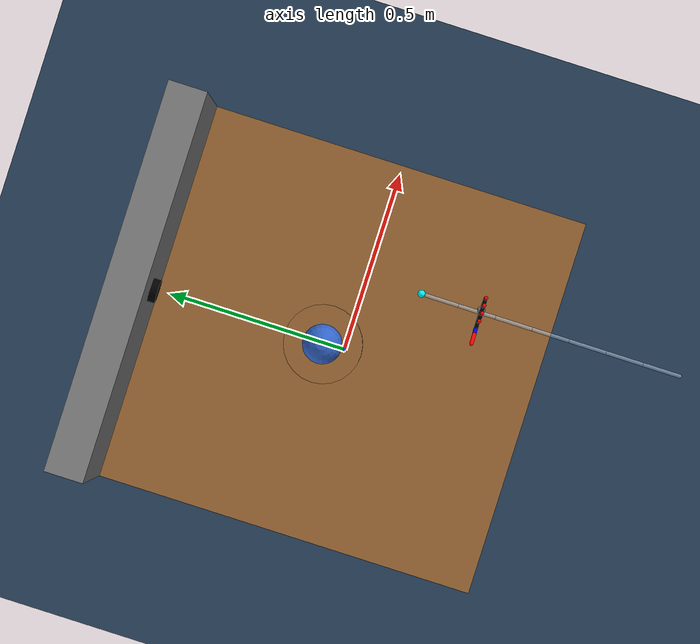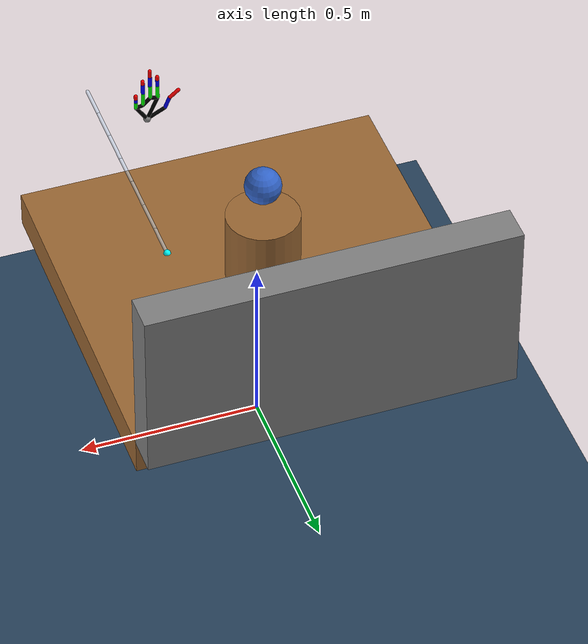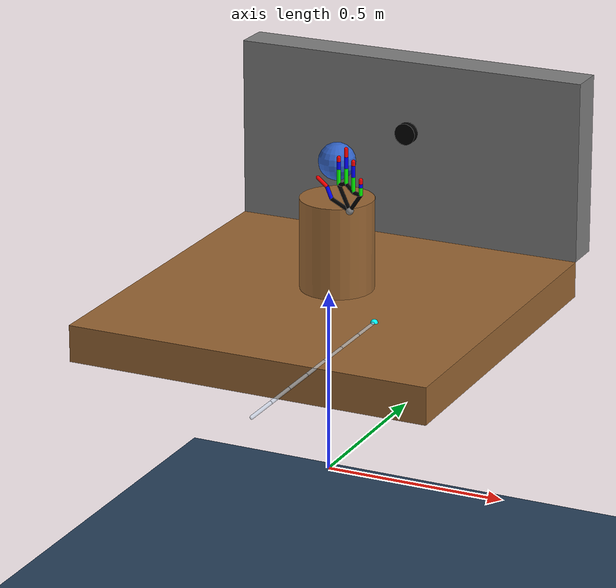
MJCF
<mujoco>
  <asset>
    <texture name="grid" type="2d" builtin="checker" rgb1=".1 .2 .3"
             rgb2=".2 .3 .4" width="300" height="300" mark="none"/>
    <material name="grid" texture="grid" texrepeat="1 1"
              texuniform="true" reflectance=".2"/>
  </asset>

  <default>
    <!-- More damping in joints so your hand doesn't punch the ball -->
    <joint damping="2.0"/>

    <!-- Softer, better-damped contacts + small margin for early, gentle contact -->
    <geom solref="0.02 1.2" solimp="0.9 0.95 0.003"
          friction="0.8 0.02 0.002" margin="0.001"/>
  </default>

  <worldbody>
    <light name="light" pos="0 0 2"/>
    <geom name="floor" type="plane" pos="0 0 -.5" size="4 4 .1" material="grid"/>
    <camera name="fixed" pos="0 -2 1" xyaxes="1 0 0 0 1 2"/>

    <!-- Table -->
    <body name="table" pos="0 0 0">
      <geom name="table_top" type="box" size="0.5 0.5 0.05" pos="0 0 0.45" rgba="0.6 0.4 0.2 1"/>
    </body>

    <!-- Wall with hole -->
    <body name="wall" pos="0 0.55 0.75">
      <geom name="wall_panel" type="box" size="0.5 0.05 0.25" rgba="0.5 0.5 0.5 1"/>
      <geom type="cylinder" size="0.03 0.02" pos="0 -0.05 0.05" rgba="0 0 0 1" euler="90 0 0"/>
    </body>

        <!-- Fiber optic cable on the table with a hanging tail -->
<body name="fiber_root" pos="0.2 -0.85 0.5">
  <joint name="fiber_root_free" type="free"/>
  <geom type="capsule" size="0.005 0.05" fromto="0 0 0 0 0.1 0" rgba="0.8 0.9 1 0.5"/>

  <!-- Segment 1 -->
  <body name="fiber_seg1" pos="0 0.1 0">
    <joint type="ball" damping="0.05"/>
    <geom type="capsule" size="0.005 0.05" fromto="0 0 0 0 0.1 0" rgba="0.8 0.9 1 0.5"/>

    <!-- Segment 2 -->
    <body name="fiber_seg2" pos="0 0.1 0">
      <joint type="ball" damping="0.05"/>
      <geom type="capsule" size="0.005 0.05" fromto="0 0 0 0 0.1 0" rgba="0.8 0.9 1 0.5"/>

      <!-- Segment 3 -->
      <body name="fiber_seg3" pos="0 0.1 0">
        <joint type="ball" damping="0.05"/>
        <geom type="capsule" size="0.005 0.05" fromto="0 0 0 0 0.1 0" rgba="0.8 0.9 1 0.5"/>

        <!-- Segment 4 -->
        <body name="fiber_seg4" pos="0 0.1 0">
          <joint type="ball" damping="0.05"/>
          <geom type="capsule" size="0.005 0.05" fromto="0 0 0 0 0.1 0" rgba="0.8 0.9 1 0.5"/>

          <!-- Segment 5 -->
          <body name="fiber_seg5" pos="0 0.1 0">
            <joint type="ball" damping="0.05"/>
            <geom type="capsule" size="0.005 0.05" fromto="0 0 0 0 0.1 0" rgba="0.8 0.9 1 0.5"/>

            <!-- Segment 6 with fiber tip -->
            <body name="fiber_seg6" pos="0 0.1 0">
              <joint type="ball" damping="0.05"/>
              <geom type="capsule" size="0.005 0.05" fromto="0 0 0 0 0.1 0" rgba="0.8 0.9 1 0.5"/>

              <!-- Glowing tip -->
              <body name="fiber_tip" pos="0 0.1 0">
                <geom name="fiber_light" type="sphere" size="0.01" rgba="0 1 1 1"/>
              </body>
            </body>

          </body>
        </body>

      </body>
    </body>
  </body>
</body>

    <!-- hand Gripper -->
    <body name="gripper_base" pos="0.2 -0.3 0.85">
      <joint name="gripper_x" type="slide" axis="1 0 0" range="-1 1" damping="5"/>
      <joint name="gripper_y" type="slide" axis="0 1 0" range="-1 1" damping="5"/>
      <joint name="gripper_z" type="slide" axis="0 0 1" range="-1 1" damping="5"/>
      <joint name="wrist_flex_pitch" type="hinge" axis="-1 0 0" range="-1 2" damping="1.0"/>
      <joint name="wrist_abduction_yaw" type="hinge" axis="0 1 0" range="-1 1" damping="1.0"/>
      <joint name="wrist_roll" type="hinge" axis="0 0 1" range="-1 1" damping="1.0"/>
      <geom type="sphere" size="0.01" mass="0.01" contype="0" conaffinity="0" rgba="0.5 0.5 0.5 1"/>

      <geom name="palm_connector_thumb" type="capsule" fromto="0 0 0  -0.05 0 0.025" size="0.005" rgba="0 0 0 1" mass="0.01"/>
      <geom name="palm_connector_index" type="capsule" fromto="0 0 0  -0.03 0 0.065" size="0.005" rgba="0 0 0 1" mass="0.01"/>
      <geom name="index_to_middle" type="capsule" fromto="-0.03 0 0.065  -0.01 0 0.07" size="0.005" rgba="0 0 0 1" mass="0.01"/>
      <geom name="middle_to_ring" type="capsule" fromto="-0.01 0 0.07  0.01 0 0.05" size="0.005" rgba="0 0 0 1" mass="0.01"/>
      <geom name="ring_to_pinky" type="capsule" fromto="0.01 0 0.05  0.03 0 0.045" size="0.005" rgba="0 0 0 1" mass="0.01"/>

      <geom name="palm_connector_pinky" type="capsule" fromto="0 0 0  0.03 0 0.045" size="0.005" rgba="0 0 0 1" mass="0.01"/>

      <!-- Thumb Finger -->
      <body name="thumb_mcp" pos="-0.05 0 0.025">
        <joint name="thumb_base" type="hinge" axis="0 -1 0" range="0 2.0944" damping="0.1"/>
        <joint name="thumb_mcp" type="hinge" axis="-1 0 0" range="0 2.0944" damping="0.1"/>
        <joint name="thumb_roll" type="hinge" axis="0 0 -1" range="0 2.0944" damping="0.1"/>

        <geom type="capsule" size="0.005 0.03" fromto="0 0 0 -0.0125 0 0.03" rgba="0 0 1 1" mass="0.01" friction="1 0.1 0.1"/>

        <body name="thumb_ip" pos="-0.0125 0 0.03">
          <joint name="thumb_ip" type="hinge" axis="0 1 0" range="0 2.0944" damping="0.1"/>
          <geom type="capsule" size="0.005 0.03" fromto="0 0 0  -0.025 0 0.02" rgba="1 0 0 1" mass="0.01" friction="1 0.1 0.1"/>
        </body>
      </body>

      <!-- Index Finger -->
      <body name="index_base" pos="-0.03 0 0.065">
        <joint name="index_mcp" type="hinge" axis="-1 0 0" range="0 2.0944" damping="1.5"/>
        <joint name="index_abd" type="hinge" axis="0 -1 0" range="0 2.0944" damping="1.5"/>
        <geom type="capsule" fromto="0 0 0 0 0 0.04" size="0.005" rgba="0 1 0 1" mass="0.01"/>

        <body name="index_pip" pos="0 0 0.04">
          <joint name="index_pip" type="hinge" axis="-1 0 0" range="0 2.0944" damping="0.1"/>
          <geom type="capsule" fromto="0 0 0 0 0 0.02" size="0.005" rgba="0 0 1 1" mass="0.01"/>

          <body name="index_dip" pos="0 0 0.02">
            <joint name="index_dip" type="hinge" axis="-1 0 0" range="0 2.0944" damping="0.1"/>
            <geom type="capsule" fromto="0 0 0 0 0 0.01" size="0.005" rgba="1 0 0 1" mass="0.01"/>
          </body>
        </body>
      </body>

      <!-- Middle Finger -->
      <body name="middle_base" pos="-0.01 0 0.07">
        <joint name="middle_mcp" type="hinge" axis="-1 0 0" range="0 2.0944" damping="0.1"/>
        <geom type="capsule" fromto="0 0 0 0 0 0.04" size="0.005" rgba="0 1 0 1" mass="0.01"/>

        <body name="middle_pip" pos="0 0 0.04">
          <joint name="middle_pip" type="hinge" axis="-1 0 0" range="0 2.0944" damping="0.1"/>
          <geom type="capsule" fromto="0 0 0 0 0 0.03" size="0.005" rgba="0 0 1 1" mass="0.01"/>

          <body name="middle_dip" pos="0 0 0.03">
            <joint name="middle_dip" type="hinge" axis="-1 0 0" range="0 2.0944" damping="0.1"/>
            <geom type="capsule" fromto="0 0 0 0 0 0.02" size="0.005" rgba="1 0 0 1" mass="0.01"/>
          </body>
        </body>
      </body>

      <!-- Ring Finger -->
      <body name="ring_base" pos="0.01 0 0.05">
        <joint name="ring_mcp" type="hinge" axis="-1 0 0" range="0 2.0944" damping="0.1"/>
        <joint name="ring_abd" type="hinge" axis="0 1 0" range="0 2.0944" damping="1.5"/>
        <geom type="capsule" fromto="0 0 0 0 0 0.04" size="0.005" rgba="0 1 0 1" mass="0.01"/>

        <body name="ring_pip" pos="0 0 0.04">
          <joint name="ring_pip" type="hinge" axis="-1 0 0" range="0 2.0944" damping="0.1"/>
          <geom type="capsule" fromto="0 0 0 0 0 0.03" size="0.005" rgba="0 0 1 1" mass="0.01"/>

          <body name="ring_dip" pos="0 0 0.03">
            <joint name="ring_dip" type="hinge" axis="-1 0 0" range="0 2.0944" damping="0.1"/>
            <geom type="capsule" fromto="0 0 0 0 0 0.01" size="0.005" rgba="1 0 0 1" mass="0.01"/>
          </body>
        </body>
      </body>

      <!-- Pinky Finger -->
      <body name="pinky_base" pos="0.03 0 0.045">
        <joint name="pinky_mcp" type="hinge" axis="-1 0 0" range="0 2.0944" damping="0.1"/>
        <joint name="pinky_abd" type="hinge" axis="0 1 0" range="0 2.0944" damping="0.1"/>
        <geom type="capsule" fromto="0 0 0 0 0 0.02" size="0.005" rgba="0 1 0 1" mass="0.01"/>

        <body name="pinky_pip" pos="0 0 0.02">
          <joint name="pinky_pip" type="hinge" axis="-1 0 0" range="0 2.0944" damping="0.1"/>
          <geom type="capsule" fromto="0 0 0 0 0 0.01" size="0.005" rgba="0 0 1 1" mass="0.01"/>

          <body name="pinky_dip" pos="0 0 0.01">
            <joint name="pinky_dip" type="hinge" axis="-1 0 0" range="0 2.0944" damping="0.1"/>
            <geom type="capsule" fromto="0 0 0 0 0 0.01" size="0.005" rgba="1 0 0 1" mass="0.01"/>
          </body>
        </body>
      </body>

    </body>

    <!-- Ball to pick up -->
    <body name="ball" pos="0.0 0.05 0.85">
      <joint type="free"/>
      <geom name="ball_geom" type="sphere" size="0.05" density="1000"
            rgba="0.2 0.4 0.8 1" friction="1.2 0.03 0.003" margin="0.001"/>
    </body>

    <!-- Foundation -->
    <body name="Foundation" pos="0.0 0.05 0.25">
      <geom name="foundation" type="cylinder" size="0.1 0.15 0.05" pos="0 0 0.35" rgba="0.6 0.4 0.2 1"/>
    </body>

  </worldbody>

  <actuator>
    <!-- Gripper actuators -->
    <!-- IMU -->
    <position name="gripper_x_act" joint="gripper_x" ctrlrange="-1 1" kp="150"/>
    <position name="gripper_y_act" joint="gripper_y" ctrlrange="-1 1" kp="50"/>
    <position name="gripper_z_act" joint="gripper_z" ctrlrange="-1 1" kp="150"/>

    <position name="wrist_flex_pitch_act" joint="wrist_flex_pitch" ctrlrange="-1 2" kp="15"/>
    <position name="wrist_abduction_yaw_act" joint="wrist_abduction_yaw" ctrlrange="-1 1" kp="15"/>
    <position name="wrist_roll_act" joint="wrist_roll" ctrlrange="-1 1" kp="15"/>

    <position name="thumb_base_act" joint="thumb_base" ctrlrange="0 2" kp="15"/>
    <position name="thumb_roll_act" joint="thumb_roll" ctrlrange="-1 2" kp="15"/>
    <position name="thumb_mcp_act" joint="thumb_mcp" ctrlrange="0 2" kp="15"/>
    <position name="thumb_ip_act" joint="thumb_ip" ctrlrange="0 2" kp="15"/>

    <position name="index_mcp_act" joint="index_mcp" ctrlrange="0 2" kp="15"/>
    <position name="index_abd_act" joint="index_abd" ctrlrange="0 2" kp="15"/>
    <position name="index_pip_act" joint="index_pip" ctrlrange="0 2" kp="15"/>
    <position name="index_dip_act" joint="index_dip" ctrlrange="0 2" kp="15"/>

    <position name="middle_mcp_act" joint="middle_mcp" ctrlrange="0 2" kp="15"/>
    <position name="middle_pip_act" joint="middle_pip" ctrlrange="0 2" kp="15"/>
    <position name="middle_dip_act" joint="middle_dip" ctrlrange="0 2" kp="15"/>

    <position name="ring_mcp_act" joint="ring_mcp" ctrlrange="0 2" kp="15"/>
    <position name="ring_abd_act" joint="ring_abd" ctrlrange="0 2" kp="15"/>
    <position name="ring_pip_act" joint="ring_pip" ctrlrange="0 2" kp="15"/>
    <position name="ring_dip_act" joint="ring_dip" ctrlrange="0 2" kp="15"/>

    <position name="pinky_mcp_act" joint="pinky_mcp" ctrlrange="0 2" kp="15"/>
    <position name="pinky_abd_act" joint="pinky_abd" ctrlrange="0 2" kp="15"/>
    <position name="pinky_pip_act" joint="pinky_pip" ctrlrange="0 2" kp="15"/>
    <position name="pinky_dip_act" joint="pinky_dip" ctrlrange="0 2" kp="15"/>
  </actuator>

</mujoco>
